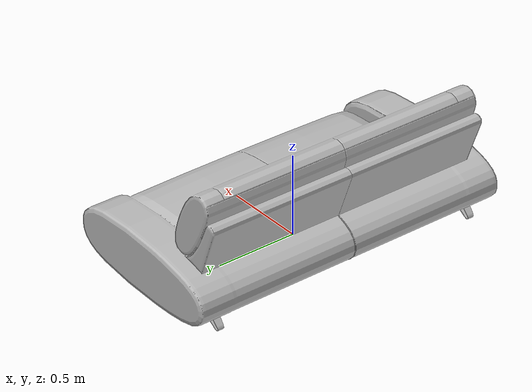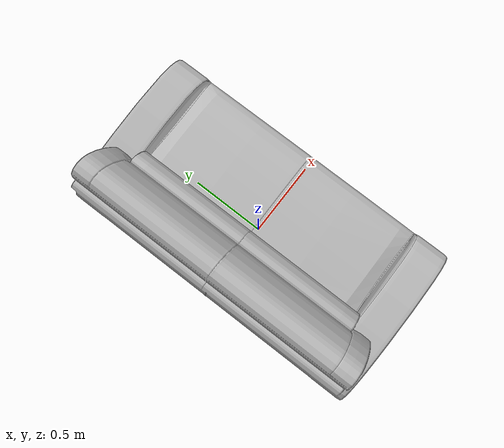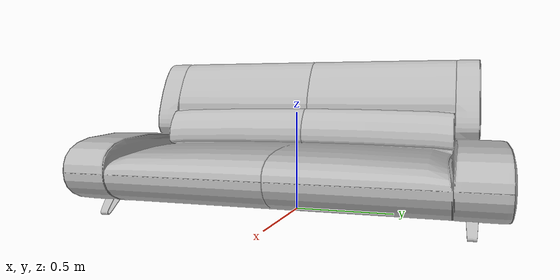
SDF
<?xml version='1.0'?>
<sdf version='1.4'>
  <model name='s__2441'>
    <pose>0 0 0 0 0 0</pose>
    <static>true</static>
    <link name='link'>
      <collision name='collision'>
        <pose>0 0 0 0 0 0</pose>
        <geometry>
          <box>
            <size>1.07 2.03 2</size>
          </box>
        </geometry>
      </collision>
      <visual name='visual'>
        <pose>0 0 0 0 0 0</pose>
        <geometry>
          <mesh><uri>model://s__2441/s__2441.dae</uri></mesh>
        </geometry>
      </visual>
    </link>
  </model>
</sdf>
